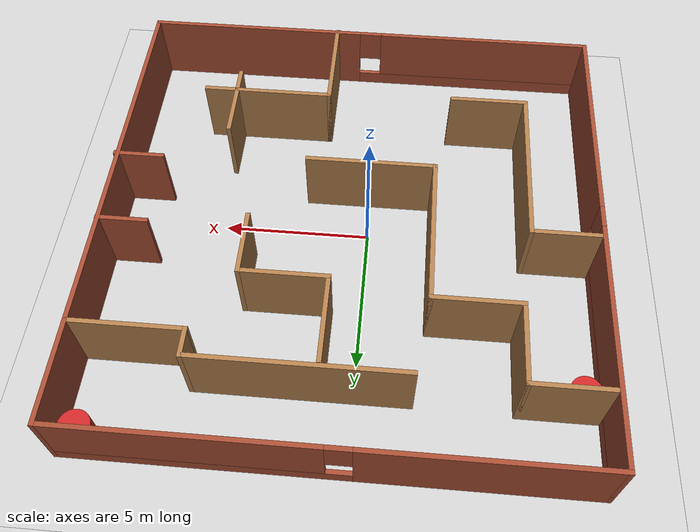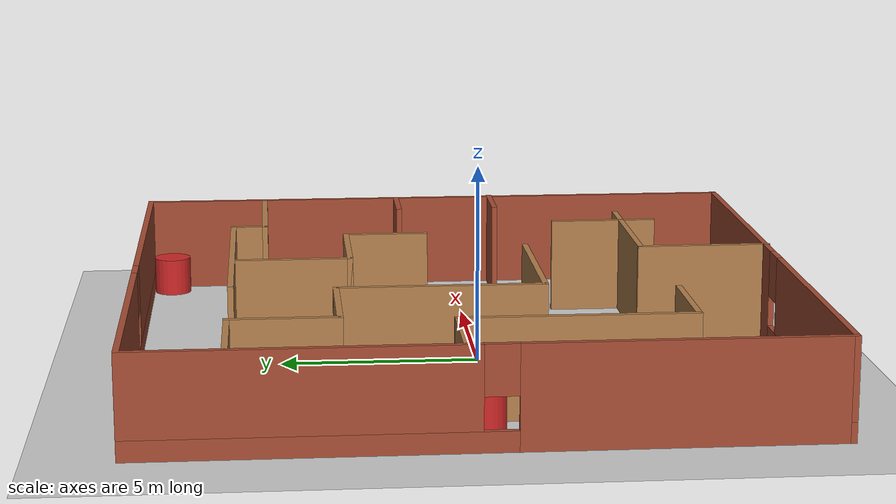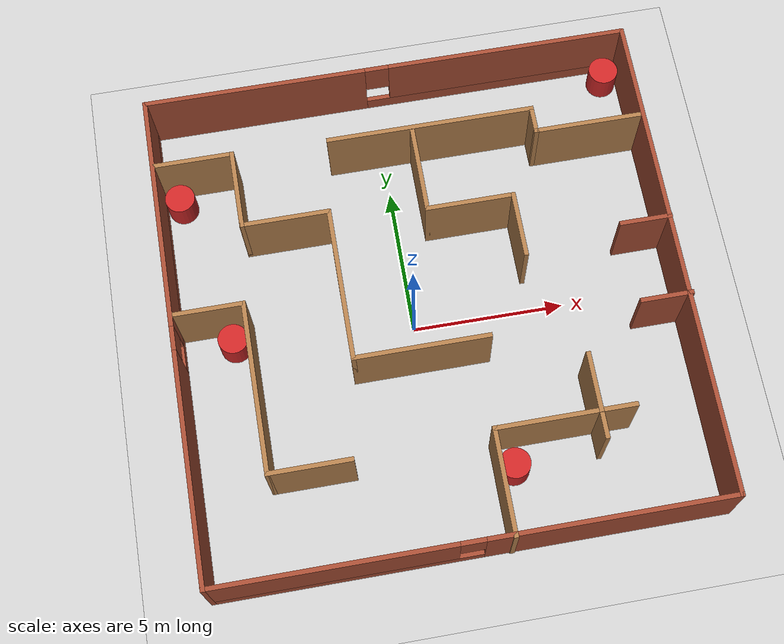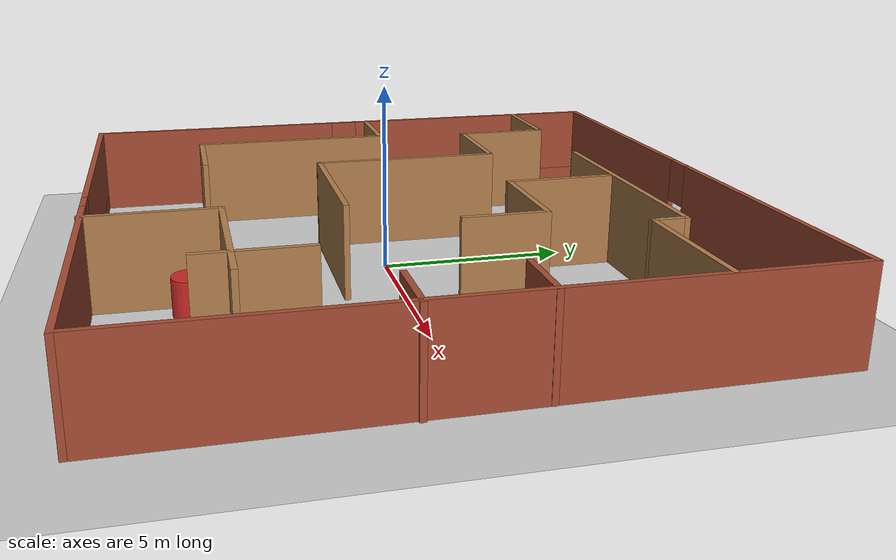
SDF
<sdf version="1.6">
 <world name="default">
  <light name="sun" type="directional">
   <pose>0 0 10 0 -0 0</pose>
   <diffuse>0.8 0.8 0.8 1</diffuse>
   <specular>0.1 0.1 0.1 1</specular>
   <attenuation>
    <range>1000</range>
    <constant>0.9</constant>
    <linear>0.01</linear>
    <quadratic>0.001</quadratic>
   </attenuation>
   <direction>-0.5 0.5 -1</direction>
  </light>
  <model name="ground_plane">
   <static>1</static>
   <link name="link">
    <collision name="collision">
     <geometry><plane><normal>0 0 1</normal><size>100 100</size></plane></geometry>
     <surface><friction><ode><mu>100</mu><mu2>50</mu2></ode></friction></surface>
    </collision>
    <visual name="visual">
     <cast_shadows>0</cast_shadows>
     <geometry><plane><normal>0 0 1</normal><size>100 100</size></plane></geometry>
     <material>
      <script><uri>file://media/materials/scripts/gazebo.material</uri><name>Gazebo/Grey</name></script>
     </material>
    </visual>
   </link>
  </model>
  <physics name="default_physics" default="0" type="ode">
   <real_time_update_rate>1000</real_time_update_rate>
   <max_step_size>0.001</max_step_size>
   <real_time_factor>1</real_time_factor>
   <ode>
    <solver>
     <type>quick</type>
     <iters>150</iters>
     <precon_iters>0</precon_iters>
     <sor>1.4</sor>
     <use_dynamic_moi_rescaling>1</use_dynamic_moi_rescaling>
    </solver>
    <constraints>
     <cfm>1e-05</cfm>
     <erp>0.2</erp>
     <contact_max_correcting_vel>2000</contact_max_correcting_vel>
     <contact_surface_layer>0.01</contact_surface_layer>
    </constraints>
   </ode>
  </physics>
  <gravity>0 0 -9.8</gravity>
  <magnetic_field>6e-06 2.3e-05 -4.2e-05</magnetic_field>
  <atmosphere type="adiabatic"/>
  <scene><ambient>0.4 0.4 0.4 1</ambient><background>0.7 0.7 0.7 1</background><shadows>1</shadows></scene>
  <spherical_coordinates>
   <surface_model>EARTH_WGS84</surface_model>
   <latitude_deg>0</latitude_deg>
   <longitude_deg>0</longitude_deg>
   <elevation>0</elevation>
   <heading_deg>0</heading_deg>
  </spherical_coordinates>
  <model name="Model3">
   <pose>0.554047 0.402325 0 0 -0 0</pose>
   <link name="Wall_46">
    <pose>-8.20852 0.019194 0 0 -0 1.5708</pose>
    <visual name="Wall_46_Visual_0">
     <pose>-4.44166 0 1.25 0 -0 0</pose>
     <geometry><box><size>7.61667 0.15 2.5</size></box></geometry>
     <material>
      <script><uri>file://media/materials/scripts/gazebo.material</uri><name>Gazebo/Bricks</name></script>
      <ambient>1 1 1 1</ambient>
     </material>
    </visual>
    <collision name="Wall_46_Collision_0">
     <geometry><box><size>7.61667 0.15 2.5</size></box></geometry>
     <pose>-4.44166 0 1.25 0 -0 0</pose>
    </collision>
    <visual name="Wall_46_Visual_1">
     <pose>3.80834 0 0.25 0 -0 0</pose>
     <geometry><box><size>8.88333 0.15 0.5</size></box></geometry>
     <material>
      <script><uri>file://media/materials/scripts/gazebo.material</uri><name>Gazebo/Bricks</name></script>
      <ambient>1 1 1 1</ambient>
     </material>
    </visual>
    <collision name="Wall_46_Collision_1">
     <geometry><box><size>8.88333 0.15 0.5</size></box></geometry>
     <pose>3.80834 0 0.25 0 -0 0</pose>
    </collision>
    <visual name="Wall_46_Visual_2">
     <pose>4.20834 0 1.5 0 -0 0</pose>
     <geometry><box><size>8.08333 0.15 2</size></box></geometry>
     <material>
      <script><uri>file://media/materials/scripts/gazebo.material</uri><name>Gazebo/Bricks</name></script>
      <ambient>1 1 1 1</ambient>
     </material>
    </visual>
    <collision name="Wall_46_Collision_2">
     <geometry><box><size>8.08333 0.15 2</size></box></geometry>
     <pose>4.20834 0 1.5 0 -0 0</pose>
    </collision>
    <visual name="Wall_46_Visual_3">
     <pose>-0.233329 0 1.9 0 -0 0</pose>
     <geometry><box><size>0.8 0.15 1.2</size></box></geometry>
     <material>
      <script><uri>file://media/materials/scripts/gazebo.material</uri><name>Gazebo/Bricks</name></script>
      <ambient>1 1 1 1</ambient>
     </material>
    </visual>
    <collision name="Wall_46_Collision_3">
     <geometry><box><size>0.8 0.15 1.2</size></box></geometry>
     <pose>-0.233329 0 1.9 0 -0 0</pose>
    </collision>
   </link>
   <link name="Wall_51">
    <pose>-0.033521 8.19419 0 0 -0 0</pose>
    <visual name="Wall_51_Visual_0">
     <pose>-4.48661 0 1.25 0 -0 0</pose>
     <geometry><box><size>7.52678 0.15 2.5</size></box></geometry>
     <material>
      <script><uri>file://media/materials/scripts/gazebo.material</uri><name>Gazebo/Bricks</name></script>
      <ambient>1 1 1 1</ambient>
     </material>
    </visual>
    <collision name="Wall_51_Collision_0">
     <geometry><box><size>7.52678 0.15 2.5</size></box></geometry>
     <pose>-4.48661 0 1.25 0 -0 0</pose>
    </collision>
    <visual name="Wall_51_Visual_1">
     <pose>3.76339 0 0.25 0 -0 0</pose>
     <geometry><box><size>8.97322 0.15 0.5</size></box></geometry>
     <material>
      <script><uri>file://media/materials/scripts/gazebo.material</uri><name>Gazebo/Bricks</name></script>
      <ambient>1 1 1 1</ambient>
     </material>
    </visual>
    <collision name="Wall_51_Collision_1">
     <geometry><box><size>8.97322 0.15 0.5</size></box></geometry>
     <pose>3.76339 0 0.25 0 -0 0</pose>
    </collision>
    <visual name="Wall_51_Visual_2">
     <pose>4.16339 0 1.5 0 -0 0</pose>
     <geometry><box><size>8.17322 0.15 2</size></box></geometry>
     <material>
      <script><uri>file://media/materials/scripts/gazebo.material</uri><name>Gazebo/Bricks</name></script>
      <ambient>1 1 1 1</ambient>
     </material>
    </visual>
    <collision name="Wall_51_Collision_2">
     <geometry><box><size>8.17322 0.15 2</size></box></geometry>
     <pose>4.16339 0 1.5 0 -0 0</pose>
    </collision>
    <visual name="Wall_51_Visual_3">
     <pose>-0.323221 0 1.9 0 -0 0</pose>
     <geometry><box><size>0.8 0.15 1.2</size></box></geometry>
     <material>
      <script><uri>file://media/materials/scripts/gazebo.material</uri><name>Gazebo/Bricks</name></script>
      <ambient>1 1 1 1</ambient>
     </material>
    </visual>
    <collision name="Wall_51_Collision_3">
     <geometry><box><size>0.8 0.15 1.2</size></box></geometry>
     <pose>-0.323221 0 1.9 0 -0 0</pose>
    </collision>
   </link>
   <link name="Wall_53">
    <collision name="Wall_53_Collision">
     <geometry><box><size>16.5 0.15 2.5</size></box></geometry>
     <pose>0 0 1.25 0 -0 0</pose>
    </collision>
    <visual name="Wall_53_Visual">
     <pose>0 0 1.25 0 -0 0</pose>
     <geometry><box><size>16.5 0.15 2.5</size></box></geometry>
     <material>
      <script><uri>file://media/materials/scripts/gazebo.material</uri><name>Gazebo/Bricks</name></script>
      <ambient>1 1 1 1</ambient>
     </material>
    </visual>
    <pose>8.14148 0.019194 0 0 0 -1.5708</pose>
   </link>
   <link name="Wall_54">
    <pose>-0.033521 -8.15581 0 0 -0 3.14159</pose>
    <visual name="Wall_54_Visual_0">
     <pose>-4.29639 0 1.25 0 -0 0</pose>
     <geometry><box><size>7.90722 0.15 2.5</size></box></geometry>
     <material>
      <script><uri>file://media/materials/scripts/gazebo.material</uri><name>Gazebo/Bricks</name></script>
      <ambient>1 1 1 1</ambient>
     </material>
    </visual>
    <collision name="Wall_54_Collision_0">
     <geometry><box><size>7.90722 0.15 2.5</size></box></geometry>
     <pose>-4.29639 0 1.25 0 -0 0</pose>
    </collision>
    <visual name="Wall_54_Visual_1">
     <pose>3.95361 0 0.25 0 -0 0</pose>
     <geometry><box><size>8.59278 0.15 0.5</size></box></geometry>
     <material>
      <script><uri>file://media/materials/scripts/gazebo.material</uri><name>Gazebo/Bricks</name></script>
      <ambient>1 1 1 1</ambient>
     </material>
    </visual>
    <collision name="Wall_54_Collision_1">
     <geometry><box><size>8.59278 0.15 0.5</size></box></geometry>
     <pose>3.95361 0 0.25 0 -0 0</pose>
    </collision>
    <visual name="Wall_54_Visual_2">
     <pose>4.35361 0 1.5 0 -0 0</pose>
     <geometry><box><size>7.79278 0.15 2</size></box></geometry>
     <material>
      <script><uri>file://media/materials/scripts/gazebo.material</uri><name>Gazebo/Bricks</name></script>
      <ambient>1 1 1 1</ambient>
     </material>
    </visual>
    <collision name="Wall_54_Collision_2">
     <geometry><box><size>7.79278 0.15 2</size></box></geometry>
     <pose>4.35361 0 1.5 0 -0 0</pose>
    </collision>
    <visual name="Wall_54_Visual_3">
     <pose>0.057219 0 1.9 0 -0 0</pose>
     <geometry><box><size>0.8 0.15 1.2</size></box></geometry>
     <material>
      <script><uri>file://media/materials/scripts/gazebo.material</uri><name>Gazebo/Bricks</name></script>
      <ambient>1 1 1 1</ambient>
     </material>
    </visual>
    <collision name="Wall_54_Collision_3">
     <geometry><box><size>0.8 0.15 1.2</size></box></geometry>
     <pose>0.057219 0 1.9 0 -0 0</pose>
    </collision>
   </link>
   <link name="Wall_56">
    <collision name="Wall_56_Collision">
     <geometry><box><size>1.75 0.15 2.5</size></box></geometry>
     <pose>0 0 1.25 0 -0 0</pose>
    </collision>
    <visual name="Wall_56_Visual">
     <pose>0 0 1.25 0 -0 0</pose>
     <geometry><box><size>1.75 0.15 2.5</size></box></geometry>
     <material>
      <script><uri>file://media/materials/scripts/gazebo.material</uri><name>Gazebo/Bricks</name></script>
      <ambient>1 1 1 1</ambient>
     </material>
    </visual>
    <pose>7.35532 1.16908 0 0 -0 3.14159</pose>
   </link>
   <link name="Wall_59">
    <collision name="Wall_59_Collision">
     <geometry><box><size>1.75 0.15 2.5</size></box></geometry>
     <pose>0 0 1.25 0 -0 0</pose>
    </collision>
    <visual name="Wall_59_Visual">
     <pose>0 0 1.25 0 -0 0</pose>
     <geometry><box><size>1.75 0.15 2.5</size></box></geometry>
     <material>
      <script><uri>file://media/materials/scripts/gazebo.material</uri><name>Gazebo/Bricks</name></script>
      <ambient>1 1 1 1</ambient>
     </material>
    </visual>
    <pose>7.40852 -1.54415 0 0 -0 3.14159</pose>
   </link>
   <link name="Wall_61">
    <collision name="Wall_61_Collision">
     <geometry><box><size>2.75 0.15 2.5</size></box></geometry>
     <pose>0 0 1.25 0 -0 0</pose>
    </collision>
    <visual name="Wall_61_Visual">
     <pose>0 0 1.25 0 -0 0</pose>
     <geometry><box><size>2.75 0.15 2.5</size></box></geometry>
     <material>
      <script><uri>file://media/materials/scripts/gazebo.material</uri><name>Gazebo/Wood</name></script>
      <ambient>1 1 1 1</ambient>
     </material>
    </visual>
    <pose>-6.8772 5.85071 0 0 -0 0</pose>
   </link>
   <link name="Wall_62">
    <collision name="Wall_62_Collision">
     <geometry><box><size>2.75 0.15 2.5</size></box></geometry>
     <pose>0 0 1.25 0 -0 0</pose>
    </collision>
    <visual name="Wall_62_Visual">
     <pose>0 0 1.25 0 -0 0</pose>
     <geometry><box><size>2.75 0.15 2.5</size></box></geometry>
     <material>
      <script><uri>file://media/materials/scripts/gazebo.material</uri><name>Gazebo/Wood</name></script>
      <ambient>1 1 1 1</ambient>
     </material>
    </visual>
    <pose>-5.5772 4.55071 0 0 0 -1.5708</pose>
   </link>
   <link name="Wall_63">
    <collision name="Wall_63_Collision">
     <geometry><box><size>3 0.15 2.5</size></box></geometry>
     <pose>0 0 1.25 0 -0 0</pose>
    </collision>
    <visual name="Wall_63_Visual">
     <pose>0 0 1.25 0 -0 0</pose>
     <geometry><box><size>3 0.15 2.5</size></box></geometry>
     <material>
      <script><uri>file://media/materials/scripts/gazebo.material</uri><name>Gazebo/Wood</name></script>
      <ambient>1 1 1 1</ambient>
     </material>
    </visual>
    <pose>-4.1522 3.25071 0 0 -0 0</pose>
   </link>
   <link name="Wall_64">
    <collision name="Wall_64_Collision">
     <geometry><box><size>5.25 0.15 2.5</size></box></geometry>
     <pose>0 0 1.25 0 -0 0</pose>
    </collision>
    <visual name="Wall_64_Visual">
     <pose>0 0 1.25 0 -0 0</pose>
     <geometry><box><size>5.25 0.15 2.5</size></box></geometry>
     <material>
      <script><uri>file://media/materials/scripts/gazebo.material</uri><name>Gazebo/Wood</name></script>
      <ambient>1 1 1 1</ambient>
     </material>
    </visual>
    <pose>-2.7272 0.70071 0 0 0 -1.5708</pose>
   </link>
   <link name="Wall_65">
    <collision name="Wall_65_Collision">
     <geometry><box><size>4.5 0.15 2.5</size></box></geometry>
     <pose>0 0 1.25 0 -0 0</pose>
    </collision>
    <visual name="Wall_65_Visual">
     <pose>0 0 1.25 0 -0 0</pose>
     <geometry><box><size>4.5 0.15 2.5</size></box></geometry>
     <material>
      <script><uri>file://media/materials/scripts/gazebo.material</uri><name>Gazebo/Wood</name></script>
      <ambient>1 1 1 1</ambient>
     </material>
    </visual>
    <pose>-0.552201 -1.84929 0 0 -0 0</pose>
   </link>
   <link name="Wall_67">
    <collision name="Wall_67_Collision">
     <geometry><box><size>3.75 0.15 2.5</size></box></geometry>
     <pose>0 0 1.25 0 -0 0</pose>
    </collision>
    <visual name="Wall_67_Visual">
     <pose>0 0 1.25 0 -0 0</pose>
     <geometry><box><size>3.75 0.15 2.5</size></box></geometry>
     <material>
      <script><uri>file://media/materials/scripts/gazebo.material</uri><name>Gazebo/Wood</name></script>
      <ambient>1 1 1 1</ambient>
     </material>
    </visual>
    <pose>6.30212 4.9463 0 0 -0 3.14159</pose>
   </link>
   <link name="Wall_68">
    <collision name="Wall_68_Collision">
     <geometry><box><size>1 0.15 2.5</size></box></geometry>
     <pose>0 0 1.25 0 -0 0</pose>
    </collision>
    <visual name="Wall_68_Visual">
     <pose>0 0 1.25 0 -0 0</pose>
     <geometry><box><size>1 0.15 2.5</size></box></geometry>
     <material>
      <script><uri>file://media/materials/scripts/gazebo.material</uri><name>Gazebo/Wood</name></script>
      <ambient>1 1 1 1</ambient>
     </material>
    </visual>
    <pose>4.50212 5.3713 0 0 -0 1.5708</pose>
   </link>
   <link name="Wall_69">
    <collision name="Wall_69_Collision">
     <geometry><box><size>7 0.15 2.5</size></box></geometry>
     <pose>0 0 1.25 0 -0 0</pose>
    </collision>
    <visual name="Wall_69_Visual">
     <pose>0 0 1.25 0 -0 0</pose>
     <geometry><box><size>7 0.15 2.5</size></box></geometry>
     <material>
      <script><uri>file://media/materials/scripts/gazebo.material</uri><name>Gazebo/Wood</name></script>
      <ambient>1 1 1 1</ambient>
     </material>
    </visual>
    <pose>1.07712 5.7963 0 0 -0 3.14159</pose>
   </link>
   <link name="Wall_71">
    <collision name="Wall_71_Collision">
     <geometry><box><size>2.25 0.15 2.5</size></box></geometry>
     <pose>0 0 1.25 0 -0 0</pose>
    </collision>
    <visual name="Wall_71_Visual">
     <pose>0 0 1.25 0 -0 0</pose>
     <geometry><box><size>2.25 0.15 2.5</size></box></geometry>
     <material>
      <script><uri>file://media/materials/scripts/gazebo.material</uri><name>Gazebo/Wood</name></script>
      <ambient>1 1 1 1</ambient>
     </material>
    </visual>
    <pose>-7.02351 0.557931 0 0 -0 0</pose>
   </link>
   <link name="Wall_74">
    <collision name="Wall_74_Collision">
     <geometry><box><size>5.75 0.15 2.5</size></box></geometry>
     <pose>0 0 1.25 0 -0 0</pose>
    </collision>
    <visual name="Wall_74_Visual">
     <pose>0 0 1.25 0 -0 0</pose>
     <geometry><box><size>5.75 0.15 2.5</size></box></geometry>
     <material>
      <script><uri>file://media/materials/scripts/gazebo.material</uri><name>Gazebo/Wood</name></script>
      <ambient>1 1 1 1</ambient>
     </material>
    </visual>
    <pose>-5.87421 -2.24201 0 0 0 -1.5708</pose>
   </link>
   <link name="Wall_75">
    <collision name="Wall_75_Collision">
     <geometry><box><size>2.75 0.15 2.5</size></box></geometry>
     <pose>0 0 1.25 0 -0 0</pose>
    </collision>
    <visual name="Wall_75_Visual">
     <pose>0 0 1.25 0 -0 0</pose>
     <geometry><box><size>2.75 0.15 2.5</size></box></geometry>
     <material>
      <script><uri>file://media/materials/scripts/gazebo.material</uri><name>Gazebo/Wood</name></script>
      <ambient>1 1 1 1</ambient>
     </material>
    </visual>
    <pose>-4.57421 -5.04201 0 0 -0 0</pose>
   </link>
   <link name="Wall_77">
    <collision name="Wall_77_Collision">
     <geometry><box><size>3.5 0.15 2.5</size></box></geometry>
     <pose>0 0 1.25 0 -0 0</pose>
    </collision>
    <visual name="Wall_77_Visual">
     <pose>0 0 1.25 0 -0 0</pose>
     <geometry><box><size>3.5 0.15 2.5</size></box></geometry>
     <material>
      <script><uri>file://media/materials/scripts/gazebo.material</uri><name>Gazebo/Wood</name></script>
      <ambient>1 1 1 1</ambient>
     </material>
    </visual>
    <pose>1.18607 -6.51919 0 0 -0 1.5708</pose>
   </link>
   <link name="Wall_78">
    <collision name="Wall_78_Collision">
     <geometry><box><size>3.5 0.15 2.5</size></box></geometry>
     <pose>0 0 1.25 0 -0 0</pose>
    </collision>
    <visual name="Wall_78_Visual">
     <pose>0 0 1.25 0 -0 0</pose>
     <geometry><box><size>3.5 0.15 2.5</size></box></geometry>
     <material>
      <script><uri>file://media/materials/scripts/gazebo.material</uri><name>Gazebo/Wood</name></script>
      <ambient>1 1 1 1</ambient>
     </material>
    </visual>
    <pose>2.86107 -4.84419 0 0 -0 0</pose>
   </link>
   <link name="Wall_79">
    <collision name="Wall_79_Collision">
     <geometry><box><size>2 0.15 2.5</size></box></geometry>
     <pose>0 0 1.25 0 -0 0</pose>
    </collision>
    <visual name="Wall_79_Visual">
     <pose>0 0 1.25 0 -0 0</pose>
     <geometry><box><size>2 0.15 2.5</size></box></geometry>
     <material>
      <script><uri>file://media/materials/scripts/gazebo.material</uri><name>Gazebo/Wood</name></script>
      <ambient>1 1 1 1</ambient>
     </material>
    </visual>
    <pose>4.53607 -3.91919 0 0 -0 1.5708</pose>
   </link>
   <link name="Wall_81">
    <collision name="Wall_81_Collision">
     <geometry><box><size>3 0.15 2.5</size></box></geometry>
     <pose>0 0 1.25 0 -0 0</pose>
    </collision>
    <visual name="Wall_81_Visual">
     <pose>0 0 1.25 0 -0 0</pose>
     <geometry><box><size>3 0.15 2.5</size></box></geometry>
     <material>
      <script><uri>file://media/materials/scripts/gazebo.material</uri><name>Gazebo/Wood</name></script>
      <ambient>1 1 1 1</ambient>
     </material>
    </visual>
    <pose>0.441264 4.21291 0 0 0 -1.5708</pose>
   </link>
   <link name="Wall_82">
    <collision name="Wall_82_Collision">
     <geometry><box><size>3 0.15 2.5</size></box></geometry>
     <pose>0 0 1.25 0 -0 0</pose>
    </collision>
    <visual name="Wall_82_Visual">
     <pose>0 0 1.25 0 -0 0</pose>
     <geometry><box><size>3 0.15 2.5</size></box></geometry>
     <material>
      <script><uri>file://media/materials/scripts/gazebo.material</uri><name>Gazebo/Wood</name></script>
      <ambient>1 1 1 1</ambient>
     </material>
    </visual>
    <pose>1.86626 2.78791 0 0 -0 0</pose>
   </link>
   <link name="Wall_83">
    <collision name="Wall_83_Collision">
     <geometry><box><size>2.25 0.15 2.5</size></box></geometry>
     <pose>0 0 1.25 0 -0 0</pose>
    </collision>
    <visual name="Wall_83_Visual">
     <pose>0 0 1.25 0 -0 0</pose>
     <geometry><box><size>2.25 0.15 2.5</size></box></geometry>
     <material>
      <script><uri>file://media/materials/scripts/gazebo.material</uri><name>Gazebo/Wood</name></script>
      <ambient>1 1 1 1</ambient>
     </material>
    </visual>
    <pose>3.29126 1.73791 0 0 0 -1.5708</pose>
   </link>
   <link name="Wall_87">
    <collision name="Wall_87_Collision">
     <geometry><box><size>1.25 0.15 2.5</size></box></geometry>
     <pose>0 0 1.25 0 -0 0</pose>
    </collision>
    <visual name="Wall_87_Visual">
     <pose>0 0 1.25 0 -0 0</pose>
     <geometry><box><size>1.25 0.15 2.5</size></box></geometry>
     <material>
      <script><uri>file://media/materials/scripts/gazebo.material</uri><name>Gazebo/Wood</name></script>
      <ambient>1 1 1 1</ambient>
     </material>
    </visual>
    <pose>5.08607 -4.84419 0 0 -0 0</pose>
   </link>
   <link name="Wall_89">
    <collision name="Wall_89_Collision">
     <geometry><box><size>1 0.15 2.5</size></box></geometry>
     <pose>0 0 1.25 0 -0 0</pose>
    </collision>
    <visual name="Wall_89_Visual">
     <pose>0 0 1.25 0 -0 0</pose>
     <geometry><box><size>1 0.15 2.5</size></box></geometry>
     <material>
      <script><uri>file://media/materials/scripts/gazebo.material</uri><name>Gazebo/Wood</name></script>
      <ambient>1 1 1 1</ambient>
     </material>
    </visual>
    <pose>4.53607 -5.26919 0 0 0 -1.5708</pose>
   </link>
   <static>1</static>
  </model>
  <model name="unit_cylinder_0">
   <pose>2.31512 -5.2656 0.499997 -4e-06 4e-06 0</pose>
   <link name="link">
    <inertial>
     <mass>1</mass>
     <inertia><ixx>0.145833</ixx><ixy>0</ixy><ixz>0</ixz><iyy>0.145833</iyy><iyz>0</iyz><izz>0.125</izz></inertia>
    </inertial>
    <collision name="collision">
     <geometry><cylinder><radius>0.5</radius><length>1</length></cylinder></geometry>
    </collision>
    <visual name="visual">
     <geometry><cylinder><radius>0.5</radius><length>1</length></cylinder></geometry>
     <material>
      <script><name>Gazebo/Red</name><uri>file://media/materials/scripts/gazebo.material</uri></script>
     </material>
    </visual>
   </link>
  </model>
  <model name="unit_cylinder_1">
   <pose>-5.91391 0.385255 0.499992 1e-06 1e-06 -2e-06</pose>
   <link name="link">
    <inertial>
     <mass>1</mass>
     <inertia><ixx>0.145833</ixx><ixy>0</ixy><ixz>0</ixz><iyy>0.145833</iyy><iyz>0</iyz><izz>0.125</izz></inertia>
    </inertial>
    <collision name="collision">
     <geometry><cylinder><radius>0.5</radius><length>1</length></cylinder></geometry>
    </collision>
    <visual name="visual">
     <geometry><cylinder><radius>0.5</radius><length>1</length></cylinder></geometry>
     <material>
      <script><name>Gazebo/Red</name><uri>file://media/materials/scripts/gazebo.material</uri></script>
     </material>
    </visual>
   </link>
  </model>
  <model name="unit_cylinder_2">
   <pose>-7.05032 5.67804 0.499998 -1e-06 -1e-06 -2e-06</pose>
   <link name="link">
    <inertial>
     <mass>1</mass>
     <inertia><ixx>0.145833</ixx><ixy>0</ixy><ixz>0</ixz><iyy>0.145833</iyy><iyz>0</iyz><izz>0.125</izz></inertia>
    </inertial>
    <collision name="collision">
     <geometry><cylinder><radius>0.5</radius><length>1</length></cylinder></geometry>
    </collision>
    <visual name="visual">
     <geometry><cylinder><radius>0.5</radius><length>1</length></cylinder></geometry>
     <material>
      <script><name>Gazebo/Red</name><uri>file://media/materials/scripts/gazebo.material</uri></script>
     </material>
    </visual>
   </link>
  </model>
  <model name="unit_cylinder_3">
   <pose>8.09663 8.00718 0.499997 -4e-06 -4e-06 -0</pose>
   <link name="link">
    <inertial>
     <mass>1</mass>
     <inertia><ixx>0.145833</ixx><ixy>0</ixy><ixz>0</ixz><iyy>0.145833</iyy><iyz>0</iyz><izz>0.125</izz></inertia>
    </inertial>
    <collision name="collision">
     <geometry><cylinder><radius>0.5</radius><length>1</length></cylinder></geometry>
    </collision>
    <visual name="visual">
     <geometry><cylinder><radius>0.5</radius><length>1</length></cylinder></geometry>
     <material>
      <script><name>Gazebo/Red</name><uri>file://media/materials/scripts/gazebo.material</uri></script>
     </material>
    </visual>
   </link>
  </model>
 </world>
</sdf>
